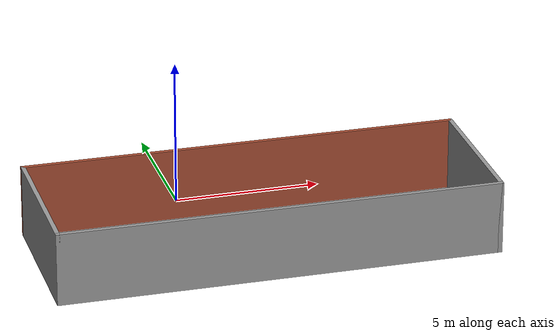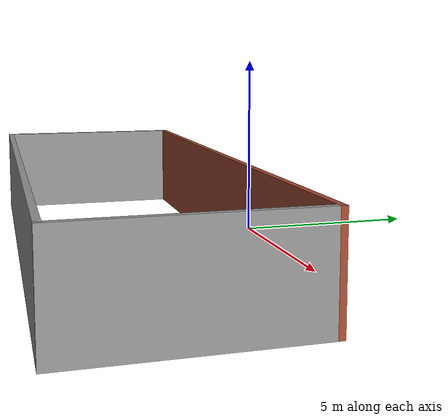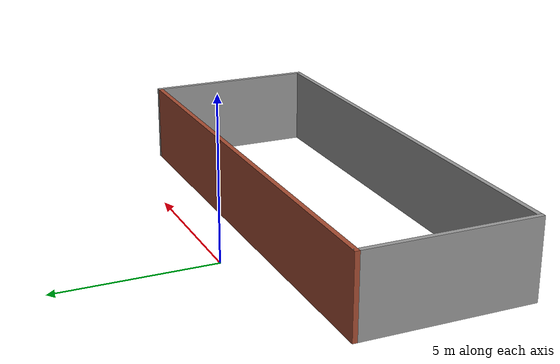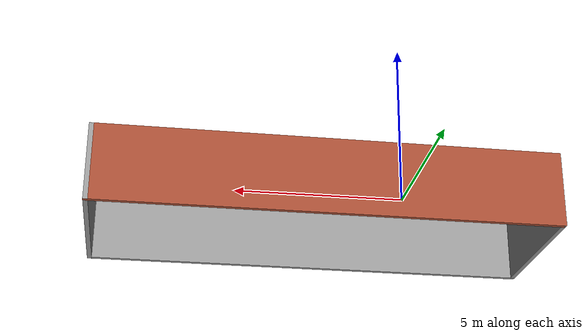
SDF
<?xml version='1.0'?>
<sdf version='1.7'>
  <model name='room'>
    <pose>1.885 -3.3975 0 0 -0 0</pose>
    <link name='Wall_0'>
      <collision name='Wall_0_Collision'>
        <geometry>
          <box>
            <size>5.5 0.15 2.5</size>
          </box>
        </geometry>
        <pose>0 0 1.25 0 -0 0</pose>
      </collision>
      <visual name='Wall_0_Visual'>
        <pose>0 0 1.25 0 -0 0</pose>
        <geometry>
          <box>
            <size>5.5 0.15 2.5</size>
          </box>
        </geometry>
        <material>
          <script>
            <uri>file://media/materials/scripts/gazebo.material</uri>
            <name>Gazebo/Grey</name>
          </script>
          <ambient>1 1 1 1</ambient>
        </material>
        <meta>
          <layer>0</layer>
        </meta>
      </visual>
      <pose>-7.425 -0.6475 0 0 -0 -1.5708</pose>
    </link>
    <link name='Wall_1'>
      <collision name='Wall_1_Collision'>
        <geometry>
          <box>
            <size>15 0.15 2.5</size>
          </box>
        </geometry>
        <pose>0 0 1.25 0 -0 0</pose>
      </collision>
      <visual name='Wall_1_Visual'>
        <pose>0 0 1.25 0 -0 0</pose>
        <geometry>
          <box>
            <size>15 0.15 2.5</size>
          </box>
        </geometry>
        <material>
          <script>
            <uri>file://media/materials/scripts/gazebo.material</uri>
            <name>Gazebo/Grey</name>
          </script>
          <ambient>1 1 1 1</ambient>
        </material>
        <meta>
          <layer>0</layer>
        </meta>
      </visual>
      <pose>-0 -3.3225 0 0 -0 0</pose>
    </link>
    <link name='Wall_2'>
      <collision name='Wall_2_Collision'>
        <geometry>
          <box>
            <size>5.5 0.15 2.5</size>
          </box>
        </geometry>
        <pose>0 0 1.25 0 -0 0</pose>
      </collision>
      <visual name='Wall_2_Visual'>
        <pose>0 0 1.25 0 -0 0</pose>
        <geometry>
          <box>
            <size>5.5 0.15 2.5</size>
          </box>
        </geometry>
        <material>
          <script>
            <uri>file://media/materials/scripts/gazebo.material</uri>
            <name>Gazebo/Grey</name>
          </script>
          <ambient>1 1 1 1</ambient>
        </material>
        <meta>
          <layer>0</layer>
        </meta>
      </visual>
      <pose>7.425 -0.6475 0 0 -0 1.5708</pose>
    </link>
    <link name='Wall_3'>
      <collision name='Wall_3_Collision'>
        <geometry>
          <box>
            <size>15 0.15 2.5</size>
          </box>
        </geometry>
        <pose>0 0 1.25 0 -0 0</pose>
      </collision>
      <visual name='Wall_3_Visual'>
        <pose>0 0 1.25 0 -0 0</pose>
        <geometry>
          <box>
            <size>15 0.15 2.5</size>
          </box>
        </geometry>
        <material>
          <script>
            <uri>file://media/materials/scripts/gazebo.material</uri>
            <name>Gazebo/Bricks</name>
          </script>
          <ambient>0.435294 0.796078 0.67451 1</ambient>
        </material>
        <meta>
          <layer>0</layer>
        </meta>
      </visual>
      <pose>-0 2.0275 0 0 -0 3.14159</pose>
    </link>
    <static>1</static>
  </model>
</sdf>
